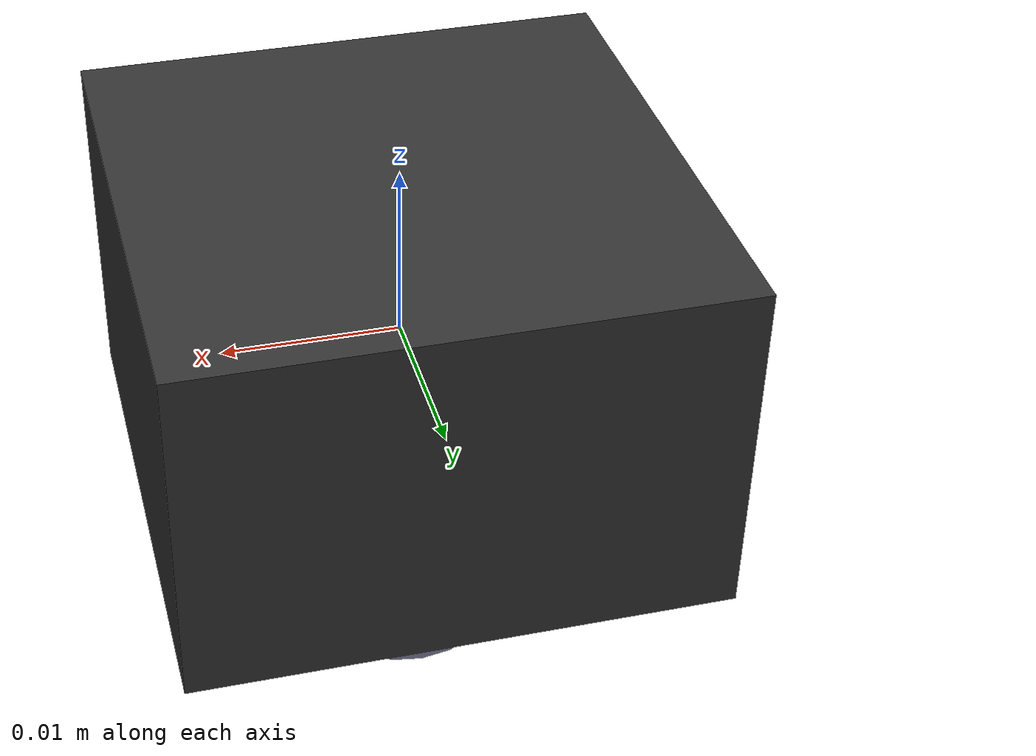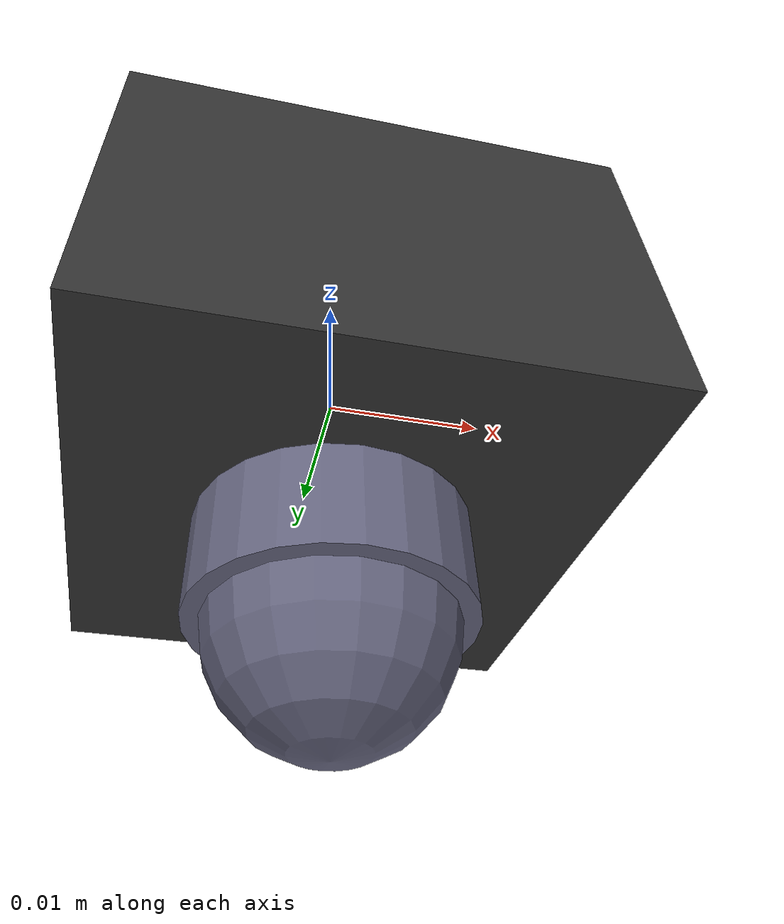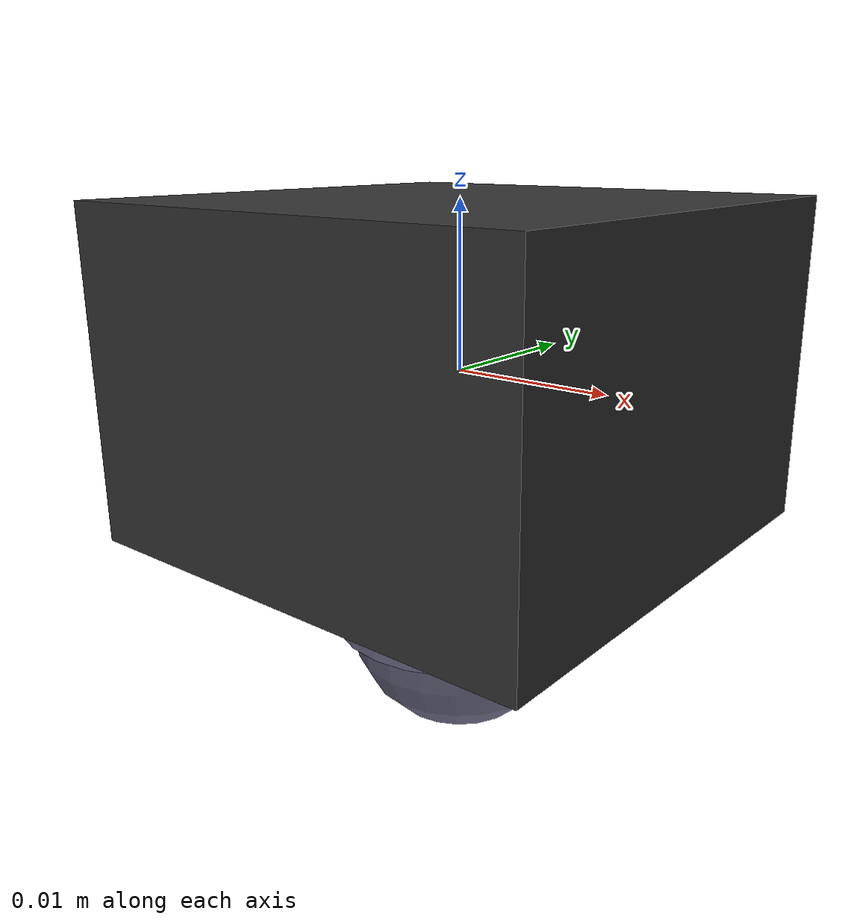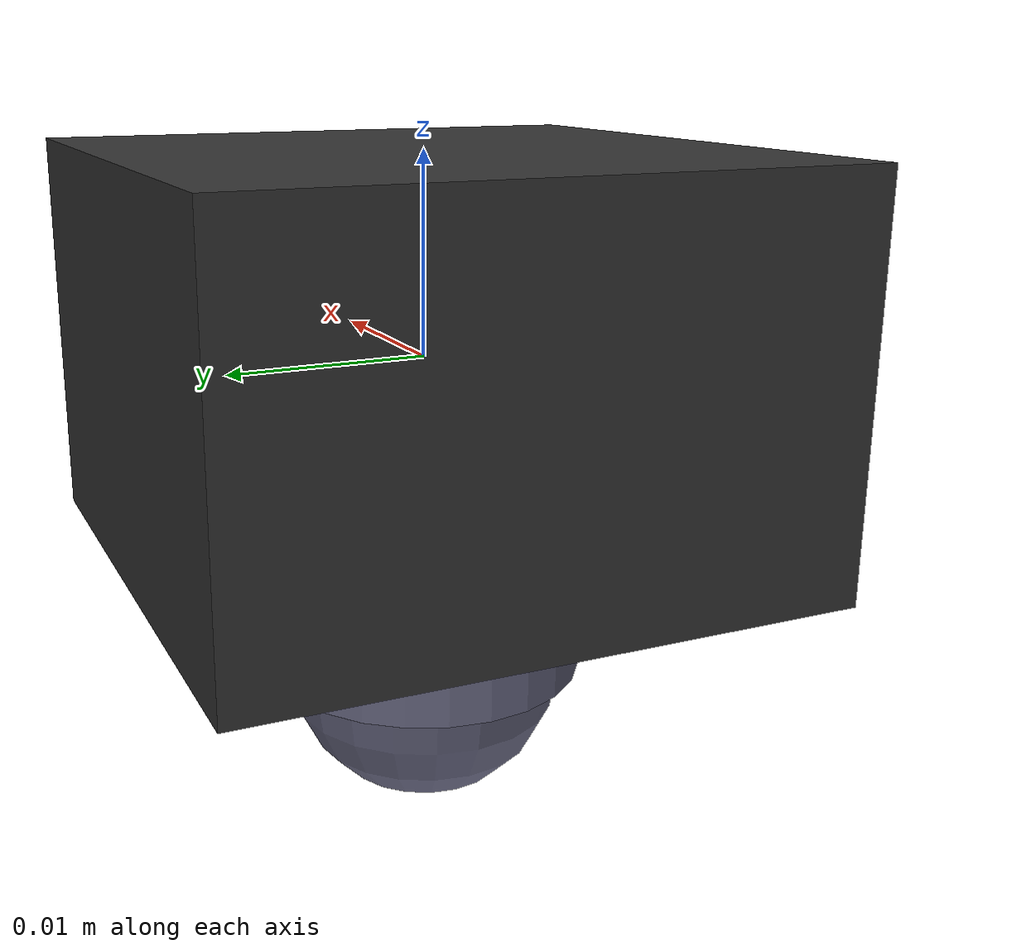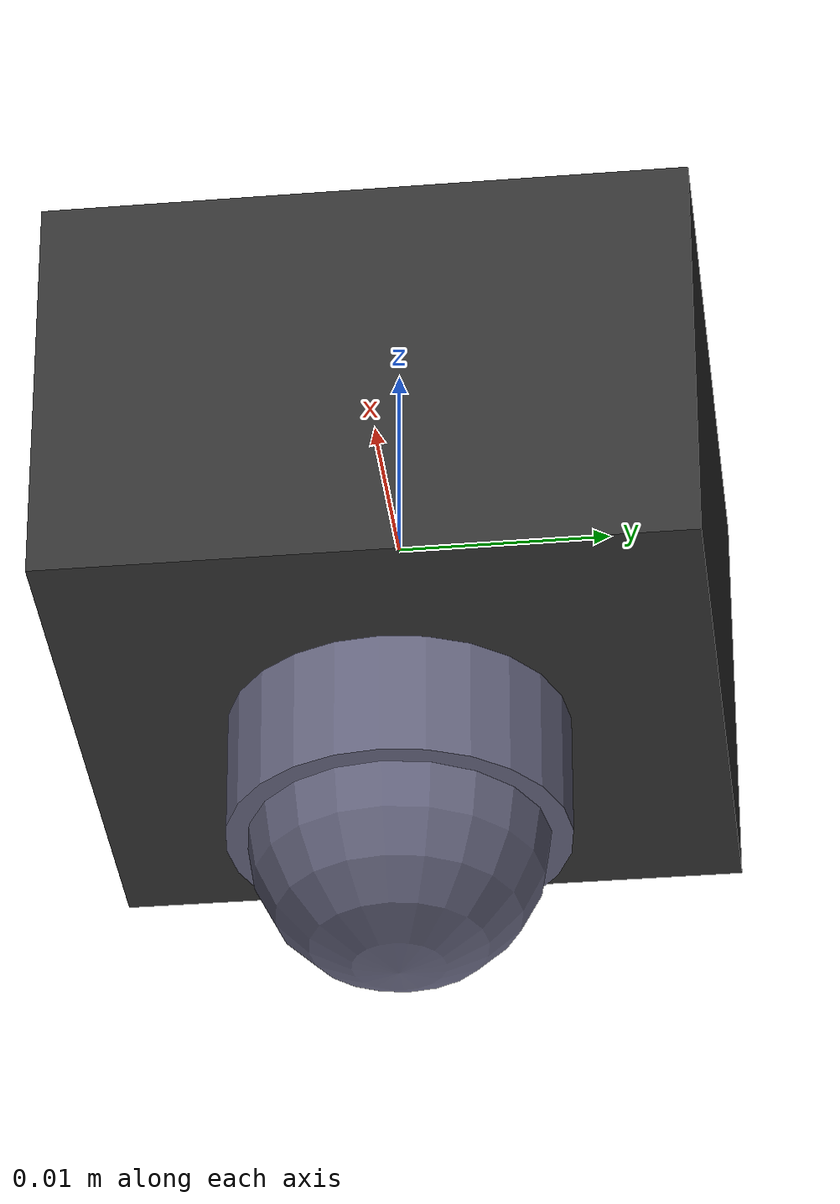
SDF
<?xml version="1.0" encoding="UTF-8"?>
<sdf version='1.9'>
  <model name='vps_cam'>
    <pose>0 0 0 0 0 0</pose>
    <self_collide>false</self_collide>
    <static>false</static>
    <link name="vps_camera_link">
      <inertial>
        <pose>0.02 0.02 0.02 0 0 0</pose>
        <mass>0.030</mass>
        <inertia>
          <ixx>0.00002</ixx>
          <ixy>0</ixy>
          <ixz>0</ixz>
          <iyy>0.00002</iyy>
          <iyz>0</iyz>
          <izz>0.00002</izz>
        </inertia>
      </inertial>
      <!-- Camera housing -->
      <visual name="vps_cam/visual/housing">
        <geometry>
          <box>
            <size>0.03 0.03 0.02</size>
          </box>
        </geometry>
        <material>
          <ambient>0.1 0.1 0.1 1</ambient>
          <diffuse>0.2 0.2 0.2 1</diffuse>
        </material>
      </visual>
      <!-- Camera lens (pointing down) -->
      <visual name="vps_cam/visual/lens">
        <pose>0 0 -0.012 0 0 0</pose>
        <geometry>
          <cylinder>
            <radius>0.008</radius>
            <length>0.008</length>
          </cylinder>
        </geometry>
        <material>
          <ambient>0.3 0.3 0.4 1</ambient>
          <diffuse>0.4 0.4 0.5 1</diffuse>
        </material>
      </visual>
      <!-- Lens glass -->
      <visual name="vps_cam/visual/lens_glass">
        <pose>0 0 -0.016 0 0 0</pose>
        <geometry>
          <sphere>
            <radius>0.007</radius>
          </sphere>
        </geometry>
        <material>
          <ambient>0.4 0.4 0.5 0.95</ambient>
          <diffuse>0.4 0.4 0.5 0.95</diffuse>
          <specular>1 1 1 1</specular>
          <emissive>0 0 0 1</emissive>
        </material>
      </visual>
      <!-- Status LED -->
      <visual name="vps_cam/visual/led">
        <pose>0.01 0 0.008 0 0 0</pose>
        <geometry>
          <sphere>
            <radius>0.002</radius>
          </sphere>
        </geometry>
        <material>
          <ambient>0 1 0 1</ambient>
          <diffuse>0 1 0 1</diffuse>
          <emissive>0 0.5 0 1</emissive>
        </material>
      </visual>
      <!-- Downward-facing VPS camera sensor -->
      <sensor name="vps_camera" type="camera">
        <pose>0 0 0 0 1.5707963 0</pose>
        <camera>
          <horizontal_fov>1.396</horizontal_fov>
          <image>
            <width>640</width>
            <height>480</height>
            <format>R8G8B8</format>
          </image>
          <clip>
            <near>0.05</near>
            <far>100</far>
          </clip>
          <noise>
            <type>gaussian</type>
            <mean>0.0</mean>
            <stddev>0.007</stddev>
          </noise>
        </camera>
        <always_on>1</always_on>
        <update_rate>30</update_rate>
        <visualize>true</visualize>
        <topic>vps_camera</topic>
      </sensor>
      <gravity>true</gravity>
      <velocity_decay/>
    </link>
  </model>
</sdf>
